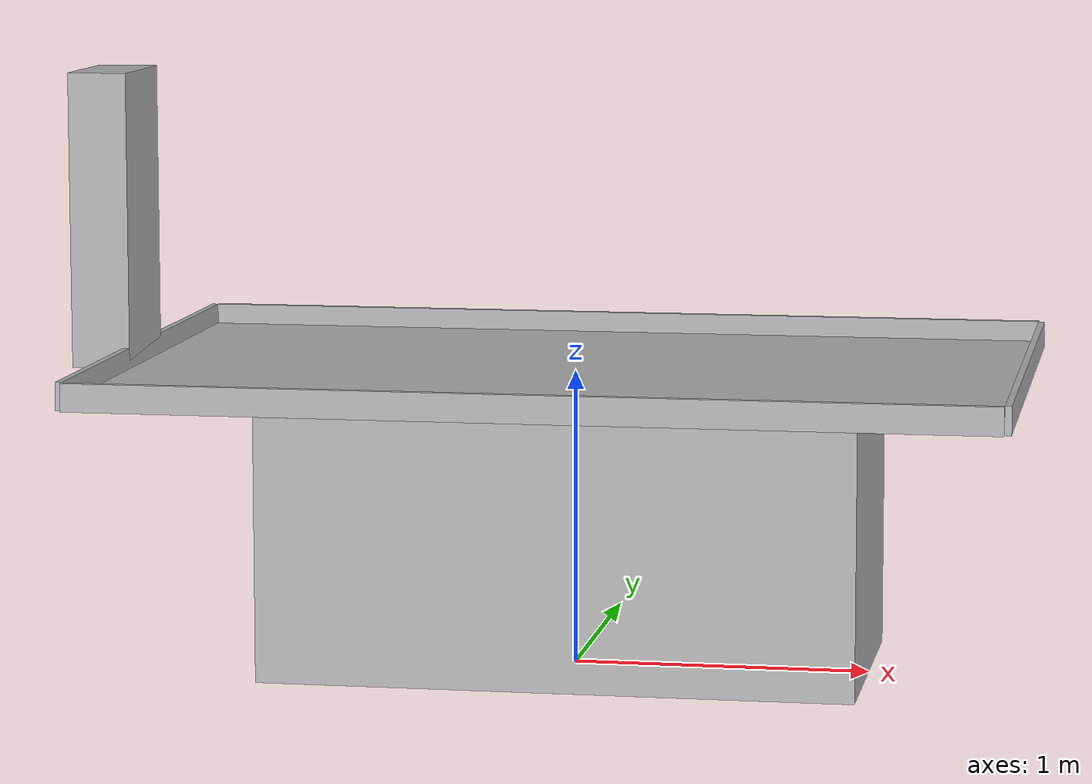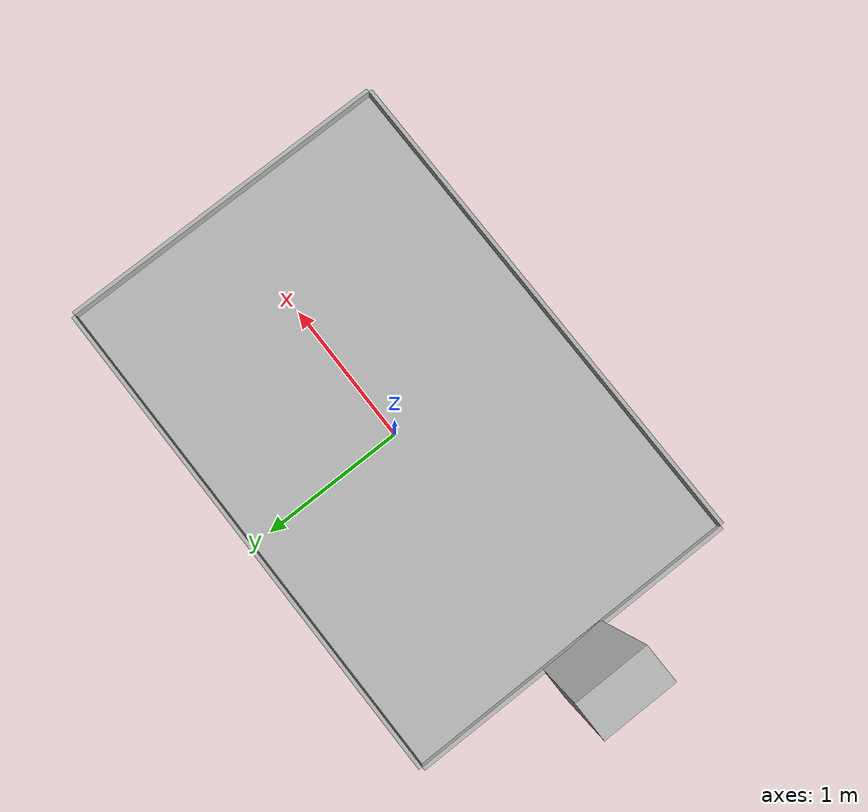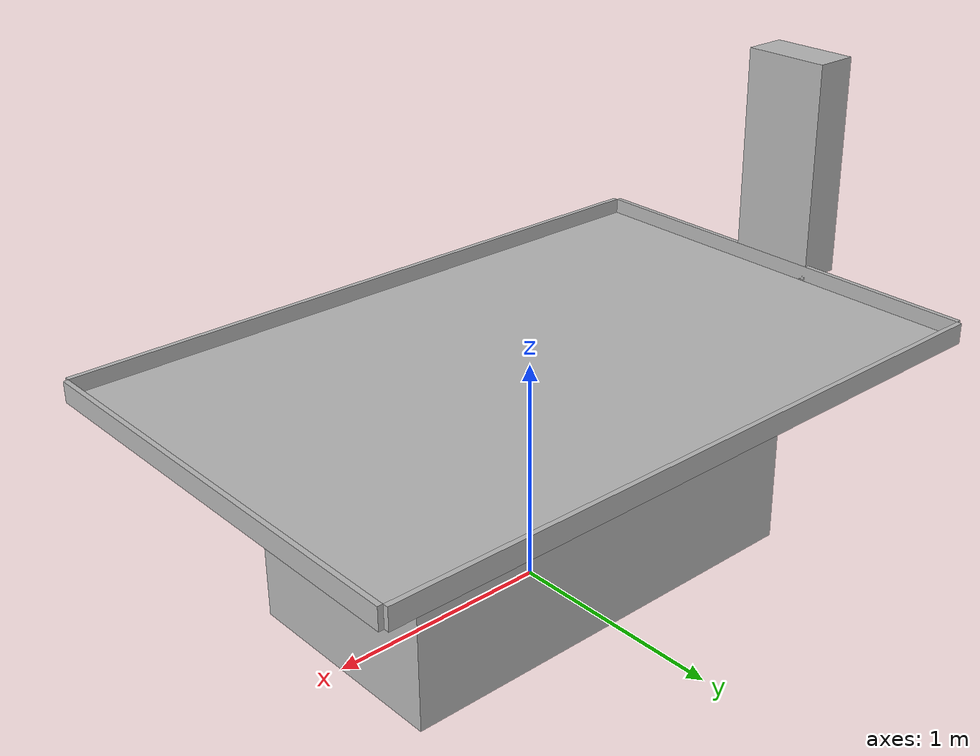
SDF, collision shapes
<?xml version='1.0'?>
<sdf version="1.4">
  <model name="eurobot_arena_2023">
    <pose>0 0 0 0 0 0</pose>
    <static>false</static>

    <link name="table">
      <inertial>
        <mass>30</mass>
        <inertia>
          <ixx>4.55</ixx>
          <ixy>0.0</ixy>
          <ixz>0.0</ixz>
          <iyy>4.55</iyy>
          <iyz>0.0</iyz>
          <izz>4.55</izz>
        </inertia>
      </inertial>

      <collision name="table_collision">
        <pose>0 0 0.989 0 0 0</pose>
        <geometry>
          <box>
            <size>3 2 0.022</size>
          </box>
        </geometry>
        <surface>
          <friction>
            <ode>
              <mu>100</mu>
              <mu2>50</mu2>
            </ode>
          </friction>
          <bounce/>
          <contact>
            <ode/>
          </contact>
        </surface>
      </collision>
      <visual name="table_visual">
        <pose>-1.5 1 0.958 0 0 0</pose>
        <geometry>
          <mesh>
            <uri>model://eurobot_arena_2023/meshes/eurobot_arena_2023_fixed.dae</uri>
            <scale>1 1 1 </scale>
          </mesh>
        </geometry>
      </visual>
      <visual name="vinyle_visual">
        <pose>-1.5 1 0.978 0 0 0</pose>
        <geometry>
          <mesh>
            <uri>model://eurobot_arena_2023/meshes/vinyle_2023.dae</uri>
            <scale>1 1 1 </scale>
          </mesh>
        </geometry>
      </visual>

      <collision name="table_left">
        <pose>0 -1.011 1.024 0 0 0</pose>
        <geometry>
          <box>
            <size>3 0.022 0.092</size>
          </box>
        </geometry>
      </collision>

      <collision name="table_right">
        <pose>0 1.011 1.024 0 0 0</pose>
        <geometry>
          <box>
            <size>3 0.022 0.092</size>
          </box>
        </geometry>
      </collision>

      <collision name="table_top">
        <pose>1.511 0 1.024 0 0 0</pose>
        <geometry>
          <box>
            <size>0.022 2 0.092</size>
          </box>
        </geometry>
      </collision>

      <collision name="table_bottom">
        <pose>-1.511 0 1.024 0 0 0</pose>
        <geometry>
          <box>
            <size>0.022 2 0.092</size>
          </box>
        </geometry>
      </collision>

      <collision name="table_stand_collision">
        <pose>0 0 0.489 0 0 0</pose>
        <geometry>
          <box>
            <size>2 1 0.978</size>
          </box>
        </geometry>
      </collision>

      <collision name="table_tower">
        <pose>-1.6 0 1.5 0 0 0</pose>
        <geometry>
          <box>
            <size>0.20 0.40 1</size>
          </box>
        </geometry>
      </collision>

      <visual name="table_stand_visual">
        <pose>0 0 0.479 0 0 0</pose>
        <geometry>
          <box>
            <size>2 1 0.978</size>
          </box>
        </geometry>
      </visual>

    </link>
  </model>
</sdf>
